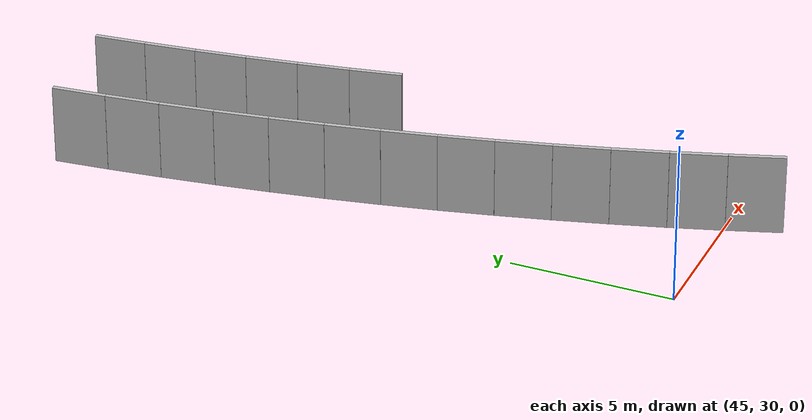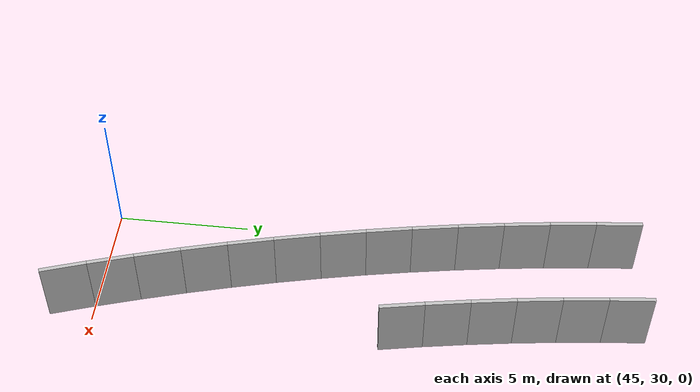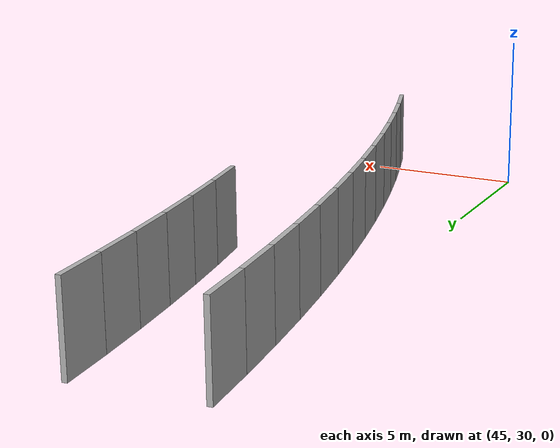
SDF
<?xml version="1.0" ?>
<sdf version="1.6">
  <model name="sps_1100">
    <pose frame="">0 0 0 0 -0 0</pose>
    <static>1</static>
    <self_collide>0</self_collide>
    <allow_auto_disable>0</allow_auto_disable>
    <link name="Wall1584">
      <kinematic>0</kinematic>
      <gravity>1</gravity>
      <self_collide>0</self_collide>
      <collision name="collision">
        <geometry>
          <box>
            <size>1.70136 0.15 2.5</size>
          </box>
        </geometry>
        <pose frame="">0 0 0 0 -0 0</pose>
      </collision>
      <visual name="visual">
        <geometry>
          <box>
            <size>1.70136 0.15 2.5</size>
          </box>
        </geometry>
        <pose frame="">0 0 0 0 -0 0</pose>
        <cast_shadows>1</cast_shadows>
        <transparency>0.0</transparency>
      </visual>
      <pose frame="">49.5879 29.1684 1.25 0 -0 1.90035</pose>
    </link>
    <link name="Wall1585">
      <kinematic>0</kinematic>
      <gravity>1</gravity>
      <self_collide>0</self_collide>
      <collision name="collision">
        <geometry>
          <box>
            <size>1.70146 0.15 2.5</size>
          </box>
        </geometry>
        <pose frame="">0 0 0 0 -0 0</pose>
      </collision>
      <visual name="visual">
        <geometry>
          <box>
            <size>1.70146 0.15 2.5</size>
          </box>
        </geometry>
        <pose frame="">0 0 0 0 -0 0</pose>
        <cast_shadows>1</cast_shadows>
        <transparency>0.0</transparency>
      </visual>
      <pose frame="">49.0529 30.7834 1.25 0 -0 1.88102</pose>
    </link>
    <link name="Wall1586">
      <kinematic>0</kinematic>
      <gravity>1</gravity>
      <self_collide>0</self_collide>
      <collision name="collision">
        <geometry>
          <box>
            <size>1.70119 0.15 2.5</size>
          </box>
        </geometry>
        <pose frame="">0 0 0 0 -0 0</pose>
      </collision>
      <visual name="visual">
        <geometry>
          <box>
            <size>1.70119 0.15 2.5</size>
          </box>
        </geometry>
        <pose frame="">0 0 0 0 -0 0</pose>
        <cast_shadows>1</cast_shadows>
        <transparency>0.0</transparency>
      </visual>
      <pose frame="">48.549 32.4083 1.25 0 -0 1.86199</pose>
    </link>
    <link name="Wall1587">
      <kinematic>0</kinematic>
      <gravity>1</gravity>
      <self_collide>0</self_collide>
      <collision name="collision">
        <geometry>
          <box>
            <size>1.70126 0.15 2.5</size>
          </box>
        </geometry>
        <pose frame="">0 0 0 0 -0 0</pose>
      </collision>
      <visual name="visual">
        <geometry>
          <box>
            <size>1.70126 0.15 2.5</size>
          </box>
        </geometry>
        <pose frame="">0 0 0 0 -0 0</pose>
        <cast_shadows>1</cast_shadows>
        <transparency>0.0</transparency>
      </visual>
      <pose frame="">48.0764 34.0425 1.25 0 -0 1.84263</pose>
    </link>
    <link name="Wall1588">
      <kinematic>0</kinematic>
      <gravity>1</gravity>
      <self_collide>0</self_collide>
      <collision name="collision">
        <geometry>
          <box>
            <size>1.70126 0.15 2.5</size>
          </box>
        </geometry>
        <pose frame="">0 0 0 0 -0 0</pose>
      </collision>
      <visual name="visual">
        <geometry>
          <box>
            <size>1.70126 0.15 2.5</size>
          </box>
        </geometry>
        <pose frame="">0 0 0 0 -0 0</pose>
        <cast_shadows>1</cast_shadows>
        <transparency>0.0</transparency>
      </visual>
      <pose frame="">47.6353 35.6855 1.25 0 -0 1.82354</pose>
    </link>
    <link name="Wall1589">
      <kinematic>0</kinematic>
      <gravity>1</gravity>
      <self_collide>0</self_collide>
      <collision name="collision">
        <geometry>
          <box>
            <size>1.70141 0.15 2.5</size>
          </box>
        </geometry>
        <pose frame="">0 0 0 0 -0 0</pose>
      </collision>
      <visual name="visual">
        <geometry>
          <box>
            <size>1.70141 0.15 2.5</size>
          </box>
        </geometry>
        <pose frame="">0 0 0 0 -0 0</pose>
        <cast_shadows>1</cast_shadows>
        <transparency>0.0</transparency>
      </visual>
      <pose frame="">47.2257 37.3367 1.25 0 -0 1.80437</pose>
    </link>
    <link name="Wall1590">
      <kinematic>0</kinematic>
      <gravity>1</gravity>
      <self_collide>0</self_collide>
      <collision name="collision">
        <geometry>
          <box>
            <size>1.70131 0.15 2.5</size>
          </box>
        </geometry>
        <pose frame="">0 0 0 0 -0 0</pose>
      </collision>
      <visual name="visual">
        <geometry>
          <box>
            <size>1.70131 0.15 2.5</size>
          </box>
        </geometry>
        <pose frame="">0 0 0 0 -0 0</pose>
        <cast_shadows>1</cast_shadows>
        <transparency>0.0</transparency>
      </visual>
      <pose frame="">46.8478 38.9955 1.25 0 -0 1.78521</pose>
    </link>
    <link name="Wall1591">
      <kinematic>0</kinematic>
      <gravity>1</gravity>
      <self_collide>0</self_collide>
      <collision name="collision">
        <geometry>
          <box>
            <size>1.70127 0.15 2.5</size>
          </box>
        </geometry>
        <pose frame="">0 0 0 0 -0 0</pose>
      </collision>
      <visual name="visual">
        <geometry>
          <box>
            <size>1.70127 0.15 2.5</size>
          </box>
        </geometry>
        <pose frame="">0 0 0 0 -0 0</pose>
        <cast_shadows>1</cast_shadows>
        <transparency>0.0</transparency>
      </visual>
      <pose frame="">46.5019 40.6612 1.25 0 -0 1.76587</pose>
    </link>
    <link name="Wall1592">
      <kinematic>0</kinematic>
      <gravity>1</gravity>
      <self_collide>0</self_collide>
      <collision name="collision">
        <geometry>
          <box>
            <size>1.70125 0.15 2.5</size>
          </box>
        </geometry>
        <pose frame="">0 0 0 0 -0 0</pose>
      </collision>
      <visual name="visual">
        <geometry>
          <box>
            <size>1.70125 0.15 2.5</size>
          </box>
        </geometry>
        <pose frame="">0 0 0 0 -0 0</pose>
        <cast_shadows>1</cast_shadows>
        <transparency>0.0</transparency>
      </visual>
      <pose frame="">46.1882 42.3332 1.25 0 -0 1.74674</pose>
    </link>
    <link name="Wall1593">
      <kinematic>0</kinematic>
      <gravity>1</gravity>
      <self_collide>0</self_collide>
      <collision name="collision">
        <geometry>
          <box>
            <size>1.70147 0.15 2.5</size>
          </box>
        </geometry>
        <pose frame="">0 0 0 0 -0 0</pose>
      </collision>
      <visual name="visual">
        <geometry>
          <box>
            <size>1.70147 0.15 2.5</size>
          </box>
        </geometry>
        <pose frame="">0 0 0 0 -0 0</pose>
        <cast_shadows>1</cast_shadows>
        <transparency>0.0</transparency>
      </visual>
      <pose frame="">45.9065 44.011 1.25 0 -0 1.72755</pose>
    </link>
    <link name="Wall1594">
      <kinematic>0</kinematic>
      <gravity>1</gravity>
      <self_collide>0</self_collide>
      <collision name="collision">
        <geometry>
          <box>
            <size>1.7013 0.15 2.5</size>
          </box>
        </geometry>
        <pose frame="">0 0 0 0 -0 0</pose>
      </collision>
      <visual name="visual">
        <geometry>
          <box>
            <size>1.7013 0.15 2.5</size>
          </box>
        </geometry>
        <pose frame="">0 0 0 0 -0 0</pose>
        <cast_shadows>1</cast_shadows>
        <transparency>0.0</transparency>
      </visual>
      <pose frame="">45.657 45.6939 1.25 0 -0 1.70831</pose>
    </link>
    <link name="Wall1595">
      <kinematic>0</kinematic>
      <gravity>1</gravity>
      <self_collide>0</self_collide>
      <collision name="collision">
        <geometry>
          <box>
            <size>1.70128 0.15 2.5</size>
          </box>
        </geometry>
        <pose frame="">0 0 0 0 -0 0</pose>
      </collision>
      <visual name="visual">
        <geometry>
          <box>
            <size>1.70128 0.15 2.5</size>
          </box>
        </geometry>
        <pose frame="">0 0 0 0 -0 0</pose>
        <cast_shadows>1</cast_shadows>
        <transparency>0.0</transparency>
      </visual>
      <pose frame="">45.4401 47.3812 1.25 0 -0 1.68907</pose>
    </link>
    <link name="Wall1596">
      <kinematic>0</kinematic>
      <gravity>1</gravity>
      <self_collide>0</self_collide>
      <collision name="collision">
        <geometry>
          <box>
            <size>1.70117 0.15 2.5</size>
          </box>
        </geometry>
        <pose frame="">0 0 0 0 -0 0</pose>
      </collision>
      <visual name="visual">
        <geometry>
          <box>
            <size>1.70117 0.15 2.5</size>
          </box>
        </geometry>
        <pose frame="">0 0 0 0 -0 0</pose>
        <cast_shadows>1</cast_shadows>
        <transparency>0.0</transparency>
      </visual>
      <pose frame="">45.2555 49.0723 1.25 0 -0 1.66998</pose>
    </link>
    <link name="Wall1795">
      <kinematic>0</kinematic>
      <gravity>1</gravity>
      <self_collide>0</self_collide>
      <collision name="collision">
        <geometry>
          <box>
            <size>1.62891 0.15 2.5</size>
          </box>
        </geometry>
        <pose frame="">0 0 0 0 -0 0</pose>
      </collision>
      <visual name="visual">
        <geometry>
          <box>
            <size>1.62891 0.15 2.5</size>
          </box>
        </geometry>
        <pose frame="">0 0 0 0 -0 0</pose>
        <cast_shadows>1</cast_shadows>
        <transparency>0.0</transparency>
      </visual>
      <pose frame="">48.7315 49.4882 1.25 0 0 -1.47239</pose>
    </link>
    <link name="Wall1796">
      <kinematic>0</kinematic>
      <gravity>1</gravity>
      <self_collide>0</self_collide>
      <collision name="collision">
        <geometry>
          <box>
            <size>1.62903 0.15 2.5</size>
          </box>
        </geometry>
        <pose frame="">0 0 0 0 -0 0</pose>
      </collision>
      <visual name="visual">
        <geometry>
          <box>
            <size>1.62903 0.15 2.5</size>
          </box>
        </geometry>
        <pose frame="">0 0 0 0 -0 0</pose>
        <cast_shadows>1</cast_shadows>
        <transparency>0.0</transparency>
      </visual>
      <pose frame="">48.907 47.8688 1.25 0 0 -1.45329</pose>
    </link>
    <link name="Wall1797">
      <kinematic>0</kinematic>
      <gravity>1</gravity>
      <self_collide>0</self_collide>
      <collision name="collision">
        <geometry>
          <box>
            <size>1.62873 0.15 2.5</size>
          </box>
        </geometry>
        <pose frame="">0 0 0 0 -0 0</pose>
      </collision>
      <visual name="visual">
        <geometry>
          <box>
            <size>1.62873 0.15 2.5</size>
          </box>
        </geometry>
        <pose frame="">0 0 0 0 -0 0</pose>
        <cast_shadows>1</cast_shadows>
        <transparency>0.0</transparency>
      </visual>
      <pose frame="">49.1133 46.2531 1.25 0 0 -1.4343</pose>
    </link>
    <link name="Wall1798">
      <kinematic>0</kinematic>
      <gravity>1</gravity>
      <self_collide>0</self_collide>
      <collision name="collision">
        <geometry>
          <box>
            <size>1.62916 0.15 2.5</size>
          </box>
        </geometry>
        <pose frame="">0 0 0 0 -0 0</pose>
      </collision>
      <visual name="visual">
        <geometry>
          <box>
            <size>1.62916 0.15 2.5</size>
          </box>
        </geometry>
        <pose frame="">0 0 0 0 -0 0</pose>
        <cast_shadows>1</cast_shadows>
        <transparency>0.0</transparency>
      </visual>
      <pose frame="">49.3505 44.6416 1.25 0 0 -1.41503</pose>
    </link>
    <link name="Wall1799">
      <kinematic>0</kinematic>
      <gravity>1</gravity>
      <self_collide>0</self_collide>
      <collision name="collision">
        <geometry>
          <box>
            <size>1.62881 0.15 2.5</size>
          </box>
        </geometry>
        <pose frame="">0 0 0 0 -0 0</pose>
      </collision>
      <visual name="visual">
        <geometry>
          <box>
            <size>1.62881 0.15 2.5</size>
          </box>
        </geometry>
        <pose frame="">0 0 0 0 -0 0</pose>
        <cast_shadows>1</cast_shadows>
        <transparency>0.0</transparency>
      </visual>
      <pose frame="">49.6184 43.0349 1.25 0 0 -1.39604</pose>
    </link>
    <link name="Wall1800">
      <kinematic>0</kinematic>
      <gravity>1</gravity>
      <self_collide>0</self_collide>
      <collision name="collision">
        <geometry>
          <box>
            <size>1.62898 0.15 2.5</size>
          </box>
        </geometry>
        <pose frame="">0 0 0 0 -0 0</pose>
      </collision>
      <visual name="visual">
        <geometry>
          <box>
            <size>1.62898 0.15 2.5</size>
          </box>
        </geometry>
        <pose frame="">0 0 0 0 -0 0</pose>
        <cast_shadows>1</cast_shadows>
        <transparency>0.0</transparency>
      </visual>
      <pose frame="">49.9171 41.4337 1.25 0 0 -1.37669</pose>
    </link>
  </model>
</sdf>
